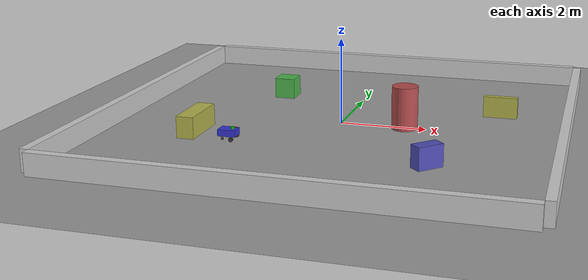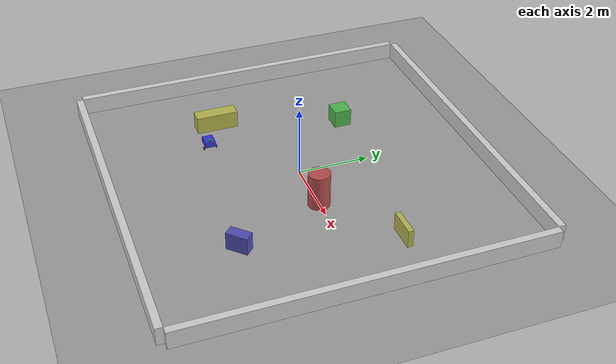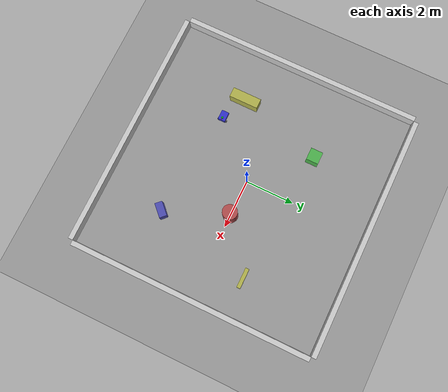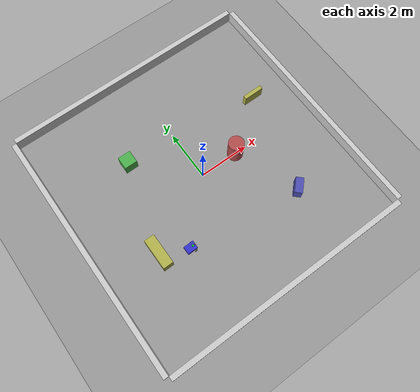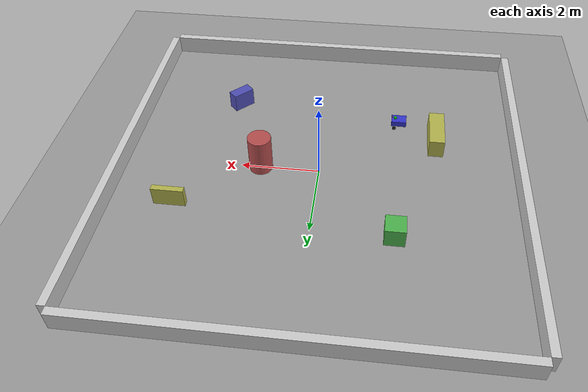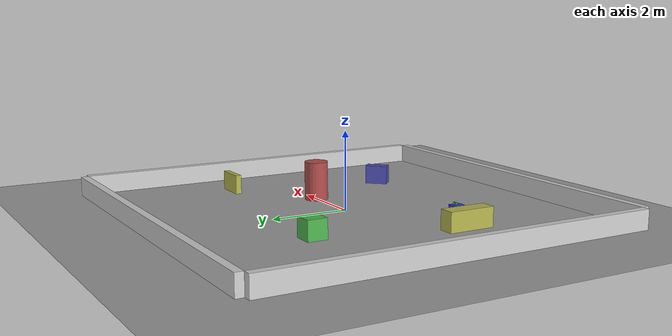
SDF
<?xml version="1.0"?>
<sdf version="1.6">
  <!--
    ====== 室内巡逻仿真世界 ======
    环境：10m × 10m 的室内空间
    障碍物：墙壁 + 几个随机障碍物
    机器人：patrol_bot 差速驱动机器人（带激光雷达）
  -->
  <world name="patrol_world">

    <!-- 物理引擎 -->
    <physics name="1ms" type="ignored">
      <max_step_size>0.001</max_step_size>
      <real_time_factor>1.0</real_time_factor>
    </physics>

    <!-- Gazebo 核心系统 -->
    <plugin filename="ignition-gazebo-physics-system"
            name="gz::sim::systems::Physics"/>
    <plugin filename="ignition-gazebo-user-commands-system"
            name="gz::sim::systems::UserCommands"/>
    <plugin filename="ignition-gazebo-scene-broadcaster-system"
            name="gz::sim::systems::SceneBroadcaster"/>
    <plugin filename="ignition-gazebo-sensors-system"
            name="gz::sim::systems::Sensors">
      <render_engine>ogre2</render_engine>
    </plugin>

    <!-- 光源 -->
    <light type="directional" name="sun">
      <cast_shadows>true</cast_shadows>
      <pose>0 0 10 0 0 0</pose>
      <diffuse>1 1 1 1</diffuse>
      <specular>0.5 0.5 0.5 1</specular>
      <attenuation>
        <range>1000</range>
        <constant>0.9</constant>
        <linear>0.01</linear>
        <quadratic>0.001</quadratic>
      </attenuation>
      <direction>-0.5 0.1 -0.9</direction>
    </light>

    <!-- 地面 -->
    <model name="ground_plane">
      <static>true</static>
      <link name="link">
        <collision name="collision">
          <geometry>
            <plane><normal>0 0 1</normal><size>100 100</size></plane>
          </geometry>
        </collision>
        <visual name="visual">
          <geometry>
            <plane><normal>0 0 1</normal><size>100 100</size></plane>
          </geometry>
          <material>
            <ambient>0.6 0.6 0.6 1</ambient>
            <diffuse>0.6 0.6 0.6 1</diffuse>
            <specular>0.6 0.6 0.6 1</specular>
          </material>
        </visual>
      </link>
    </model>

    <!-- ====== 墙壁 ====== -->
    <!-- 北墙 -->
    <model name="wall_north">
      <static>true</static>
      <pose>0 5.1 0.25 0 0 0</pose>
      <link name="link">
        <collision name="collision">
          <geometry><box><size>10 0.2 0.5</size></box></geometry>
        </collision>
        <visual name="visual">
          <geometry><box><size>10 0.2 0.5</size></box></geometry>
          <material><ambient>0.8 0.8 0.8 1</ambient></material>
        </visual>
      </link>
    </model>

    <!-- 南墙 -->
    <model name="wall_south">
      <static>true</static>
      <pose>0 -5.1 0.25 0 0 0</pose>
      <link name="link">
        <collision name="collision">
          <geometry><box><size>10 0.2 0.5</size></box></geometry>
        </collision>
        <visual name="visual">
          <geometry><box><size>10 0.2 0.5</size></box></geometry>
          <material><ambient>0.8 0.8 0.8 1</ambient></material>
        </visual>
      </link>
    </model>

    <!-- 东墙 -->
    <model name="wall_east">
      <static>true</static>
      <pose>5.1 0 0.25 0 0 1.5708</pose>
      <link name="link">
        <collision name="collision">
          <geometry><box><size>10 0.2 0.5</size></box></geometry>
        </collision>
        <visual name="visual">
          <geometry><box><size>10 0.2 0.5</size></box></geometry>
          <material><ambient>0.8 0.8 0.8 1</ambient></material>
        </visual>
      </link>
    </model>

    <!-- 西墙 -->
    <model name="wall_west">
      <static>true</static>
      <pose>-5.1 0 0.25 0 0 1.5708</pose>
      <link name="link">
        <collision name="collision">
          <geometry><box><size>10 0.2 0.5</size></box></geometry>
        </collision>
        <visual name="visual">
          <geometry><box><size>10 0.2 0.5</size></box></geometry>
          <material><ambient>0.8 0.8 0.8 1</ambient></material>
        </visual>
      </link>
    </model>

    <!-- ====== 内部障碍物 ====== -->
    <!-- 中间柱子 -->
    <model name="pillar">
      <static>true</static>
      <pose>1.5 0 0.5 0 0 0</pose>
      <link name="link">
        <collision name="collision">
          <geometry><cylinder><radius>0.3</radius><length>1.0</length></cylinder></geometry>
        </collision>
        <visual name="visual">
          <geometry><cylinder><radius>0.3</radius><length>1.0</length></cylinder></geometry>
          <material><ambient>0.7 0.3 0.3 1</ambient></material>
        </visual>
      </link>
    </model>

    <!-- 左前障碍物 -->
    <model name="obstacle_1">
      <static>true</static>
      <pose>-2.0 2.0 0.25 0 0 0</pose>
      <link name="link">
        <collision name="collision">
          <geometry><box><size>0.5 0.5 0.5</size></box></geometry>
        </collision>
        <visual name="visual">
          <geometry><box><size>0.5 0.5 0.5</size></box></geometry>
          <material><ambient>0.3 0.7 0.3 1</ambient></material>
        </visual>
      </link>
    </model>

    <!-- 右前障碍物 -->
    <model name="obstacle_2">
      <static>true</static>
      <pose>2.5 -2.5 0.25 0 0 0.7854</pose>
      <link name="link">
        <collision name="collision">
          <geometry><box><size>0.6 0.3 0.5</size></box></geometry>
        </collision>
        <visual name="visual">
          <geometry><box><size>0.6 0.3 0.5</size></box></geometry>
          <material><ambient>0.3 0.3 0.7 1</ambient></material>
        </visual>
      </link>
    </model>

    <!-- 后方障碍物 -->
    <model name="obstacle_3">
      <static>true</static>
      <pose>-3.0 -1.5 0.25 0 0 0</pose>
      <link name="link">
        <collision name="collision">
          <geometry><box><size>0.4 1.2 0.5</size></box></geometry>
        </collision>
        <visual name="visual">
          <geometry><box><size>0.4 1.2 0.5</size></box></geometry>
          <material><ambient>0.7 0.7 0.3 1</ambient></material>
        </visual>
      </link>
    </model>

    <!-- 右侧条形障碍 -->
    <model name="obstacle_4">
      <static>true</static>
      <pose>3.5 1.5 0.25 0 0 0</pose>
      <link name="link">
        <collision name="collision">
          <geometry><box><size>0.8 0.15 0.5</size></box></geometry>
        </collision>
        <visual name="visual">
          <geometry><box><size>0.8 0.15 0.5</size></box></geometry>
          <material><ambient>0.7 0.7 0.3 1</ambient></material>
        </visual>
      </link>
    </model>

    <!-- ====== 巡逻机器人 PatrolBot ====== -->
    <model name="patrol_bot">
      <pose>-2.0 -2.0 0.12 0 0 0</pose>

      <!-- 底盘 -->
      <link name="chassis">
        <pose>0 0 0.1 0 0 0</pose>
        <inertial>
          <mass>5.0</mass>
          <inertia>
            <ixx>0.1</ixx><ixy>0.0</ixy><ixz>0.0</ixz>
            <iyy>0.1</iyy><iyz>0.0</iyz>
            <izz>0.1</izz>
          </inertia>
        </inertial>
        <visual name="chassis_visual">
          <geometry><box><size>0.4 0.3 0.15</size></box></geometry>
          <material>
            <ambient>0.2 0.2 0.8 1</ambient>
            <diffuse>0.2 0.2 0.8 1</diffuse>
          </material>
        </visual>
        <collision name="chassis_collision">
          <geometry><box><size>0.4 0.3 0.15</size></box></geometry>
        </collision>
      </link>

      <!-- 左轮 -->
      <link name="left_wheel">
        <pose>0.12 0.18 -0.02 1.5708 0 0</pose>
        <inertial>
          <mass>0.5</mass>
          <inertia><ixx>0.001</ixx><iyy>0.001</iyy><izz>0.001</izz></inertia>
        </inertial>
        <visual name="left_wheel_visual">
          <geometry><cylinder><radius>0.05</radius><length>0.02</length></cylinder></geometry>
          <material><ambient>0.2 0.2 0.2 1</ambient></material>
        </visual>
        <collision name="left_wheel_collision">
          <geometry><cylinder><radius>0.05</radius><length>0.02</length></cylinder></geometry>
        </collision>
      </link>

      <!-- 右轮 -->
      <link name="right_wheel">
        <pose>0.12 -0.18 -0.02 1.5708 0 0</pose>
        <inertial>
          <mass>0.5</mass>
          <inertia><ixx>0.001</ixx><iyy>0.001</iyy><izz>0.001</izz></inertia>
        </inertial>
        <visual name="right_wheel_visual">
          <geometry><cylinder><radius>0.05</radius><length>0.02</length></cylinder></geometry>
          <material><ambient>0.2 0.2 0.2 1</ambient></material>
        </visual>
        <collision name="right_wheel_collision">
          <geometry><cylinder><radius>0.05</radius><length>0.02</length></cylinder></geometry>
        </collision>
      </link>

      <!-- 万向轮 -->
      <link name="caster">
        <pose>-0.15 0 -0.07 0 0 0</pose>
        <inertial>
          <mass>0.1</mass>
          <inertia><ixx>0.0001</ixx><iyy>0.0001</iyy><izz>0.0001</izz></inertia>
        </inertial>
        <visual name="caster_visual">
          <geometry><sphere><radius>0.03</radius></sphere></geometry>
          <material><ambient>0.2 0.2 0.2 1</ambient></material>
        </visual>
      </link>

      <!-- LiDAR -->
      <link name="lidar_link">
        <pose>0.1 0 0.2 0 0 0</pose>
        <inertial>
          <mass>0.01</mass>
          <inertia><ixx>0.00001</ixx><iyy>0.00001</iyy><izz>0.00001</izz></inertia>
        </inertial>
        <visual name="lidar_visual">
          <geometry><cylinder><radius>0.04</radius><length>0.04</length></cylinder></geometry>
          <material><ambient>0.0 0.8 0.0 1</ambient></material>
        </visual>
        <sensor name="lidar" type="gpu_lidar">
          <topic>scan</topic>
          <update_rate>10</update_rate>
          <lidar>
            <scan>
              <horizontal>
                <samples>360</samples>
                <resolution>1</resolution>
                <min_angle>-3.14159</min_angle>
                <max_angle>3.14159</max_angle>
              </horizontal>
            </scan>
            <range>
              <min>0.1</min>
              <max>12.0</max>
              <resolution>0.02</resolution>
            </range>
          </lidar>
          <always_on>1</always_on>
          <visualize>true</visualize>
        </sensor>
      </link>

      <!-- 虚拟相机（RGB 视觉，为 M5 视觉分段预留） -->
      <link name="camera_link">
        <pose>0.18 0 0.22 0 0 0</pose>
        <inertial>
          <mass>0.01</mass>
          <inertia>
            <ixx>0.00001</ixx><iyy>0.00001</iyy><izz>0.00001</izz>
          </inertia>
        </inertial>
        <visual name="camera_visual">
          <geometry><box><size>0.03 0.03 0.02</size></box></geometry>
          <material><ambient>0.8 0.2 0.2 1</ambient></material>
        </visual>
        <sensor name="camera" type="camera">
          <topic>camera/image_raw</topic>
          <update_rate>10</update_rate>
          <camera>
            <horizontal_fov>1.047</horizontal_fov>
            <image><width>640</width><height>480</height></image>
            <clip><near>0.1</near><far>100</far></clip>
          </camera>
          <always_on>1</always_on>
          <visualize>true</visualize>
        </sensor>
      </link>

      <!-- 关节 -->
      <joint name="left_wheel_joint" type="revolute">
        <parent>chassis</parent><child>left_wheel</child>
        <axis><xyz>0 0 1</xyz></axis>
      </joint>
      <joint name="right_wheel_joint" type="revolute">
        <parent>chassis</parent><child>right_wheel</child>
        <axis><xyz>0 0 1</xyz></axis>
      </joint>
      <joint name="caster_joint" type="ball">
        <parent>chassis</parent><child>caster</child>
      </joint>
      <joint name="lidar_joint" type="fixed">
        <parent>chassis</parent><child>lidar_link</child>
      </joint>
      <joint name="camera_joint" type="fixed">
        <parent>chassis</parent><child>camera_link</child>
      </joint>

      <!-- ====== 差速驱动插件 ====== -->
      <plugin filename="ignition-gazebo-diff-drive-system"
              name="gz::sim::systems::DiffDrive">
        <left_joint>left_wheel_joint</left_joint>
        <right_joint>right_wheel_joint</right_joint>
        <wheel_separation>0.36</wheel_separation>
        <wheel_radius>0.05</wheel_radius>
        <odom_publish_frequency>30</odom_publish_frequency>
        <topic>/model/patrol_bot/cmd_vel</topic>
        <odom_topic>/model/patrol_bot/odometry</odom_topic>
        <tf_topic>/model/patrol_bot/tf</tf_topic>
        <max_linear_velocity>0.5</max_linear_velocity>
        <min_linear_velocity>-0.5</min_linear_velocity>
        <max_angular_velocity>1.5</max_angular_velocity>
        <min_angular_velocity>-1.5</min_angular_velocity>
      </plugin>

    </model>

  </world>
</sdf>
